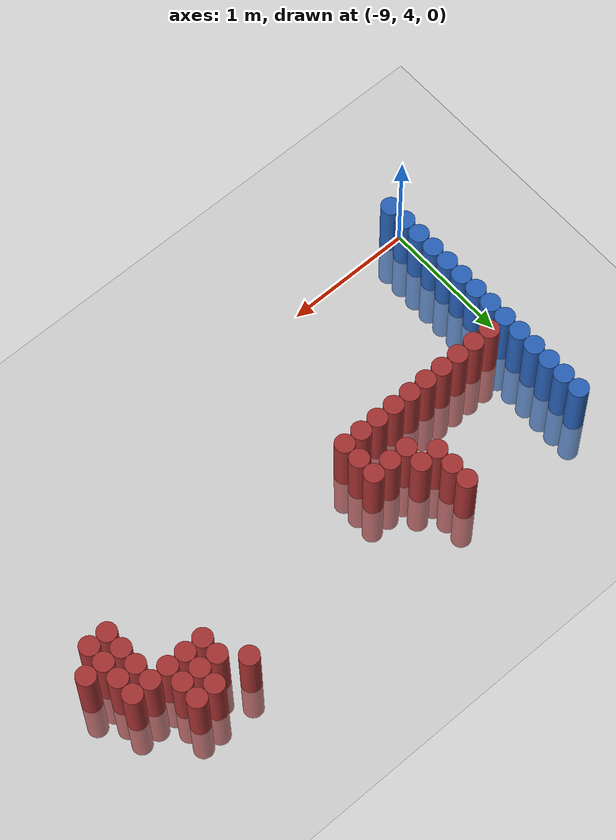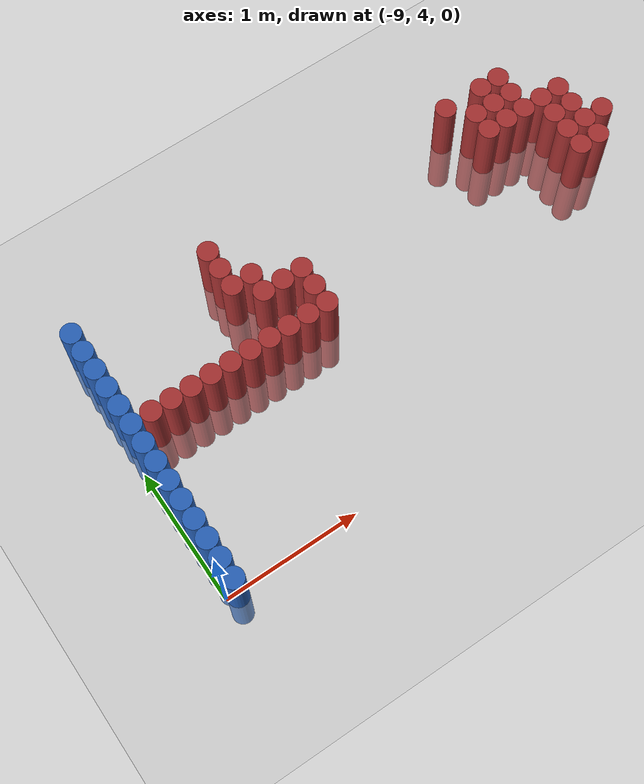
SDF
<sdf version="1.6">
 <world name="default">
  <model name="ground_plane">
   <static>1</static>
   <link name="link">
    <collision name="collision">
     <geometry><plane><normal>0 0 1</normal><size>100 100</size></plane></geometry>
     <surface><friction><ode><mu>100</mu><mu2>50</mu2></ode></friction></surface>
    </collision>
    <visual name="visual">
     <cast_shadows>0</cast_shadows>
     <geometry><plane><normal>0 0 1</normal><size>100 100</size></plane></geometry>
     <material>
      <script><uri>file://media/materials/scripts/gazebo.material</uri><name>Gazebo/Grey</name></script>
     </material>
    </visual>
   </link>
  </model>
  <model name="unit_cylinder_110">
   <static>1</static>
   <pose>-8.925000 3.975000 0.000000 0.000000 0.000000 0.000000</pose>
   <link name="link">
    <inertial>
     <mass>1</mass>
     <inertia><ixx>0.145833</ixx><ixy>0</ixy><ixz>0</ixz><iyy>0.145833</iyy><iyz>0</iyz><izz>0.125</izz></inertia>
    </inertial>
    <collision name="collision">
     <geometry><cylinder><radius>0.075000</radius><length>1</length></cylinder></geometry>
    </collision>
    <visual name="visual">
     <geometry><cylinder><radius>0.075000</radius><length>1</length></cylinder></geometry>
     <material>
      <ambient>0.152000 0.379000 0.720000 1</ambient>
      <diffuse>0.152000 0.379000 0.720000 1</diffuse>
     </material>
     <material>
      <script><name>Gazebo/Grey</name><uri>file://media/materials/scripts/gazebo.material</uri></script>
     </material>
    </visual>
   </link>
  </model>
  <model name="unit_cylinder_112">
   <static>1</static>
   <pose>-8.925000 4.125000 0.000000 0.000000 0.000000 0.000000</pose>
   <link name="link">
    <inertial>
     <mass>1</mass>
     <inertia><ixx>0.145833</ixx><ixy>0</ixy><ixz>0</ixz><iyy>0.145833</iyy><iyz>0</iyz><izz>0.125</izz></inertia>
    </inertial>
    <collision name="collision">
     <geometry><cylinder><radius>0.075000</radius><length>1</length></cylinder></geometry>
    </collision>
    <visual name="visual">
     <geometry><cylinder><radius>0.075000</radius><length>1</length></cylinder></geometry>
     <material>
      <ambient>0.152000 0.379000 0.720000 1</ambient>
      <diffuse>0.152000 0.379000 0.720000 1</diffuse>
     </material>
     <material>
      <script><name>Gazebo/Grey</name><uri>file://media/materials/scripts/gazebo.material</uri></script>
     </material>
    </visual>
   </link>
  </model>
  <model name="unit_cylinder_114">
   <static>1</static>
   <pose>-8.925000 4.275000 0.000000 0.000000 0.000000 0.000000</pose>
   <link name="link">
    <inertial>
     <mass>1</mass>
     <inertia><ixx>0.145833</ixx><ixy>0</ixy><ixz>0</ixz><iyy>0.145833</iyy><iyz>0</iyz><izz>0.125</izz></inertia>
    </inertial>
    <collision name="collision">
     <geometry><cylinder><radius>0.075000</radius><length>1</length></cylinder></geometry>
    </collision>
    <visual name="visual">
     <geometry><cylinder><radius>0.075000</radius><length>1</length></cylinder></geometry>
     <material>
      <ambient>0.152000 0.379000 0.720000 1</ambient>
      <diffuse>0.152000 0.379000 0.720000 1</diffuse>
     </material>
     <material>
      <script><name>Gazebo/Grey</name><uri>file://media/materials/scripts/gazebo.material</uri></script>
     </material>
    </visual>
   </link>
  </model>
  <model name="unit_cylinder_116">
   <static>1</static>
   <pose>-8.925000 4.425000 0.000000 0.000000 0.000000 0.000000</pose>
   <link name="link">
    <inertial>
     <mass>1</mass>
     <inertia><ixx>0.145833</ixx><ixy>0</ixy><ixz>0</ixz><iyy>0.145833</iyy><iyz>0</iyz><izz>0.125</izz></inertia>
    </inertial>
    <collision name="collision">
     <geometry><cylinder><radius>0.075000</radius><length>1</length></cylinder></geometry>
    </collision>
    <visual name="visual">
     <geometry><cylinder><radius>0.075000</radius><length>1</length></cylinder></geometry>
     <material>
      <ambient>0.152000 0.379000 0.720000 1</ambient>
      <diffuse>0.152000 0.379000 0.720000 1</diffuse>
     </material>
     <material>
      <script><name>Gazebo/Grey</name><uri>file://media/materials/scripts/gazebo.material</uri></script>
     </material>
    </visual>
   </link>
  </model>
  <model name="unit_cylinder_118">
   <static>1</static>
   <pose>-8.925000 4.575000 0.000000 0.000000 0.000000 0.000000</pose>
   <link name="link">
    <inertial>
     <mass>1</mass>
     <inertia><ixx>0.145833</ixx><ixy>0</ixy><ixz>0</ixz><iyy>0.145833</iyy><iyz>0</iyz><izz>0.125</izz></inertia>
    </inertial>
    <collision name="collision">
     <geometry><cylinder><radius>0.075000</radius><length>1</length></cylinder></geometry>
    </collision>
    <visual name="visual">
     <geometry><cylinder><radius>0.075000</radius><length>1</length></cylinder></geometry>
     <material>
      <ambient>0.152000 0.379000 0.720000 1</ambient>
      <diffuse>0.152000 0.379000 0.720000 1</diffuse>
     </material>
     <material>
      <script><name>Gazebo/Grey</name><uri>file://media/materials/scripts/gazebo.material</uri></script>
     </material>
    </visual>
   </link>
  </model>
  <model name="unit_cylinder_120">
   <static>1</static>
   <pose>-8.925000 4.725000 0.000000 0.000000 0.000000 0.000000</pose>
   <link name="link">
    <inertial>
     <mass>1</mass>
     <inertia><ixx>0.145833</ixx><ixy>0</ixy><ixz>0</ixz><iyy>0.145833</iyy><iyz>0</iyz><izz>0.125</izz></inertia>
    </inertial>
    <collision name="collision">
     <geometry><cylinder><radius>0.075000</radius><length>1</length></cylinder></geometry>
    </collision>
    <visual name="visual">
     <geometry><cylinder><radius>0.075000</radius><length>1</length></cylinder></geometry>
     <material>
      <ambient>0.152000 0.379000 0.720000 1</ambient>
      <diffuse>0.152000 0.379000 0.720000 1</diffuse>
     </material>
     <material>
      <script><name>Gazebo/Grey</name><uri>file://media/materials/scripts/gazebo.material</uri></script>
     </material>
    </visual>
   </link>
  </model>
  <model name="unit_cylinder_122">
   <static>1</static>
   <pose>-8.925000 4.875000 0.000000 0.000000 0.000000 0.000000</pose>
   <link name="link">
    <inertial>
     <mass>1</mass>
     <inertia><ixx>0.145833</ixx><ixy>0</ixy><ixz>0</ixz><iyy>0.145833</iyy><iyz>0</iyz><izz>0.125</izz></inertia>
    </inertial>
    <collision name="collision">
     <geometry><cylinder><radius>0.075000</radius><length>1</length></cylinder></geometry>
    </collision>
    <visual name="visual">
     <geometry><cylinder><radius>0.075000</radius><length>1</length></cylinder></geometry>
     <material>
      <ambient>0.152000 0.379000 0.720000 1</ambient>
      <diffuse>0.152000 0.379000 0.720000 1</diffuse>
     </material>
     <material>
      <script><name>Gazebo/Grey</name><uri>file://media/materials/scripts/gazebo.material</uri></script>
     </material>
    </visual>
   </link>
  </model>
  <model name="unit_cylinder_124">
   <static>1</static>
   <pose>-8.925000 5.025000 0.000000 0.000000 0.000000 0.000000</pose>
   <link name="link">
    <inertial>
     <mass>1</mass>
     <inertia><ixx>0.145833</ixx><ixy>0</ixy><ixz>0</ixz><iyy>0.145833</iyy><iyz>0</iyz><izz>0.125</izz></inertia>
    </inertial>
    <collision name="collision">
     <geometry><cylinder><radius>0.075000</radius><length>1</length></cylinder></geometry>
    </collision>
    <visual name="visual">
     <geometry><cylinder><radius>0.075000</radius><length>1</length></cylinder></geometry>
     <material>
      <ambient>0.152000 0.379000 0.720000 1</ambient>
      <diffuse>0.152000 0.379000 0.720000 1</diffuse>
     </material>
     <material>
      <script><name>Gazebo/Grey</name><uri>file://media/materials/scripts/gazebo.material</uri></script>
     </material>
    </visual>
   </link>
  </model>
  <model name="unit_cylinder_125">
   <static>1</static>
   <pose>-8.925000 5.175000 0.000000 0.000000 0.000000 0.000000</pose>
   <link name="link">
    <inertial>
     <mass>1</mass>
     <inertia><ixx>0.145833</ixx><ixy>0</ixy><ixz>0</ixz><iyy>0.145833</iyy><iyz>0</iyz><izz>0.125</izz></inertia>
    </inertial>
    <collision name="collision">
     <geometry><cylinder><radius>0.075000</radius><length>1</length></cylinder></geometry>
    </collision>
    <visual name="visual">
     <geometry><cylinder><radius>0.075000</radius><length>1</length></cylinder></geometry>
     <material>
      <ambient>0.152000 0.379000 0.720000 1</ambient>
      <diffuse>0.152000 0.379000 0.720000 1</diffuse>
     </material>
     <material>
      <script><name>Gazebo/Grey</name><uri>file://media/materials/scripts/gazebo.material</uri></script>
     </material>
    </visual>
   </link>
  </model>
  <model name="unit_cylinder_126">
   <static>1</static>
   <pose>-8.925000 5.325000 0.000000 0.000000 0.000000 0.000000</pose>
   <link name="link">
    <inertial>
     <mass>1</mass>
     <inertia><ixx>0.145833</ixx><ixy>0</ixy><ixz>0</ixz><iyy>0.145833</iyy><iyz>0</iyz><izz>0.125</izz></inertia>
    </inertial>
    <collision name="collision">
     <geometry><cylinder><radius>0.075000</radius><length>1</length></cylinder></geometry>
    </collision>
    <visual name="visual">
     <geometry><cylinder><radius>0.075000</radius><length>1</length></cylinder></geometry>
     <material>
      <ambient>0.152000 0.379000 0.720000 1</ambient>
      <diffuse>0.152000 0.379000 0.720000 1</diffuse>
     </material>
     <material>
      <script><name>Gazebo/Grey</name><uri>file://media/materials/scripts/gazebo.material</uri></script>
     </material>
    </visual>
   </link>
  </model>
  <model name="unit_cylinder_127">
   <static>1</static>
   <pose>-8.925000 5.475000 0.000000 0.000000 0.000000 0.000000</pose>
   <link name="link">
    <inertial>
     <mass>1</mass>
     <inertia><ixx>0.145833</ixx><ixy>0</ixy><ixz>0</ixz><iyy>0.145833</iyy><iyz>0</iyz><izz>0.125</izz></inertia>
    </inertial>
    <collision name="collision">
     <geometry><cylinder><radius>0.075000</radius><length>1</length></cylinder></geometry>
    </collision>
    <visual name="visual">
     <geometry><cylinder><radius>0.075000</radius><length>1</length></cylinder></geometry>
     <material>
      <ambient>0.152000 0.379000 0.720000 1</ambient>
      <diffuse>0.152000 0.379000 0.720000 1</diffuse>
     </material>
     <material>
      <script><name>Gazebo/Grey</name><uri>file://media/materials/scripts/gazebo.material</uri></script>
     </material>
    </visual>
   </link>
  </model>
  <model name="unit_cylinder_128">
   <static>1</static>
   <pose>-8.925000 5.625000 0.000000 0.000000 0.000000 0.000000</pose>
   <link name="link">
    <inertial>
     <mass>1</mass>
     <inertia><ixx>0.145833</ixx><ixy>0</ixy><ixz>0</ixz><iyy>0.145833</iyy><iyz>0</iyz><izz>0.125</izz></inertia>
    </inertial>
    <collision name="collision">
     <geometry><cylinder><radius>0.075000</radius><length>1</length></cylinder></geometry>
    </collision>
    <visual name="visual">
     <geometry><cylinder><radius>0.075000</radius><length>1</length></cylinder></geometry>
     <material>
      <ambient>0.152000 0.379000 0.720000 1</ambient>
      <diffuse>0.152000 0.379000 0.720000 1</diffuse>
     </material>
     <material>
      <script><name>Gazebo/Grey</name><uri>file://media/materials/scripts/gazebo.material</uri></script>
     </material>
    </visual>
   </link>
  </model>
  <model name="unit_cylinder_129">
   <static>1</static>
   <pose>-8.925000 5.775000 0.000000 0.000000 0.000000 0.000000</pose>
   <link name="link">
    <inertial>
     <mass>1</mass>
     <inertia><ixx>0.145833</ixx><ixy>0</ixy><ixz>0</ixz><iyy>0.145833</iyy><iyz>0</iyz><izz>0.125</izz></inertia>
    </inertial>
    <collision name="collision">
     <geometry><cylinder><radius>0.075000</radius><length>1</length></cylinder></geometry>
    </collision>
    <visual name="visual">
     <geometry><cylinder><radius>0.075000</radius><length>1</length></cylinder></geometry>
     <material>
      <ambient>0.152000 0.379000 0.720000 1</ambient>
      <diffuse>0.152000 0.379000 0.720000 1</diffuse>
     </material>
     <material>
      <script><name>Gazebo/Grey</name><uri>file://media/materials/scripts/gazebo.material</uri></script>
     </material>
    </visual>
   </link>
  </model>
  <model name="unit_cylinder_130">
   <static>1</static>
   <pose>-8.925000 5.925000 0.000000 0.000000 0.000000 0.000000</pose>
   <link name="link">
    <inertial>
     <mass>1</mass>
     <inertia><ixx>0.145833</ixx><ixy>0</ixy><ixz>0</ixz><iyy>0.145833</iyy><iyz>0</iyz><izz>0.125</izz></inertia>
    </inertial>
    <collision name="collision">
     <geometry><cylinder><radius>0.075000</radius><length>1</length></cylinder></geometry>
    </collision>
    <visual name="visual">
     <geometry><cylinder><radius>0.075000</radius><length>1</length></cylinder></geometry>
     <material>
      <ambient>0.152000 0.379000 0.720000 1</ambient>
      <diffuse>0.152000 0.379000 0.720000 1</diffuse>
     </material>
     <material>
      <script><name>Gazebo/Grey</name><uri>file://media/materials/scripts/gazebo.material</uri></script>
     </material>
    </visual>
   </link>
  </model>
  <model name="unit_cylinder_155">
   <static>1</static>
   <pose>-8.775000 5.175000 0.000000 0.000000 0.000000 0.000000</pose>
   <link name="link">
    <inertial>
     <mass>1</mass>
     <inertia><ixx>0.145833</ixx><ixy>0</ixy><ixz>0</ixz><iyy>0.145833</iyy><iyz>0</iyz><izz>0.125</izz></inertia>
    </inertial>
    <collision name="collision">
     <geometry><cylinder><radius>0.075000</radius><length>1</length></cylinder></geometry>
    </collision>
    <visual name="visual">
     <geometry><cylinder><radius>0.075000</radius><length>1</length></cylinder></geometry>
     <material>
      <ambient>0.648000 0.192000 0.192000 1</ambient>
      <diffuse>0.648000 0.192000 0.192000 1</diffuse>
     </material>
     <material>
      <script><name>Gazebo/Grey</name><uri>file://media/materials/scripts/gazebo.material</uri></script>
     </material>
    </visual>
   </link>
  </model>
  <model name="unit_cylinder_157">
   <static>1</static>
   <pose>-8.625000 5.175000 0.000000 0.000000 0.000000 0.000000</pose>
   <link name="link">
    <inertial>
     <mass>1</mass>
     <inertia><ixx>0.145833</ixx><ixy>0</ixy><ixz>0</ixz><iyy>0.145833</iyy><iyz>0</iyz><izz>0.125</izz></inertia>
    </inertial>
    <collision name="collision">
     <geometry><cylinder><radius>0.075000</radius><length>1</length></cylinder></geometry>
    </collision>
    <visual name="visual">
     <geometry><cylinder><radius>0.075000</radius><length>1</length></cylinder></geometry>
     <material>
      <ambient>0.648000 0.192000 0.192000 1</ambient>
      <diffuse>0.648000 0.192000 0.192000 1</diffuse>
     </material>
     <material>
      <script><name>Gazebo/Grey</name><uri>file://media/materials/scripts/gazebo.material</uri></script>
     </material>
    </visual>
   </link>
  </model>
  <model name="unit_cylinder_159">
   <static>1</static>
   <pose>-8.475000 5.175000 0.000000 0.000000 0.000000 0.000000</pose>
   <link name="link">
    <inertial>
     <mass>1</mass>
     <inertia><ixx>0.145833</ixx><ixy>0</ixy><ixz>0</ixz><iyy>0.145833</iyy><iyz>0</iyz><izz>0.125</izz></inertia>
    </inertial>
    <collision name="collision">
     <geometry><cylinder><radius>0.075000</radius><length>1</length></cylinder></geometry>
    </collision>
    <visual name="visual">
     <geometry><cylinder><radius>0.075000</radius><length>1</length></cylinder></geometry>
     <material>
      <ambient>0.648000 0.192000 0.192000 1</ambient>
      <diffuse>0.648000 0.192000 0.192000 1</diffuse>
     </material>
     <material>
      <script><name>Gazebo/Grey</name><uri>file://media/materials/scripts/gazebo.material</uri></script>
     </material>
    </visual>
   </link>
  </model>
  <model name="unit_cylinder_181">
   <static>1</static>
   <pose>-8.325000 5.175000 0.000000 0.000000 0.000000 0.000000</pose>
   <link name="link">
    <inertial>
     <mass>1</mass>
     <inertia><ixx>0.145833</ixx><ixy>0</ixy><ixz>0</ixz><iyy>0.145833</iyy><iyz>0</iyz><izz>0.125</izz></inertia>
    </inertial>
    <collision name="collision">
     <geometry><cylinder><radius>0.075000</radius><length>1</length></cylinder></geometry>
    </collision>
    <visual name="visual">
     <geometry><cylinder><radius>0.075000</radius><length>1</length></cylinder></geometry>
     <material>
      <ambient>0.648000 0.192000 0.192000 1</ambient>
      <diffuse>0.648000 0.192000 0.192000 1</diffuse>
     </material>
     <material>
      <script><name>Gazebo/Grey</name><uri>file://media/materials/scripts/gazebo.material</uri></script>
     </material>
    </visual>
   </link>
  </model>
  <model name="unit_cylinder_185">
   <static>1</static>
   <pose>-8.175000 5.175000 0.000000 0.000000 0.000000 0.000000</pose>
   <link name="link">
    <inertial>
     <mass>1</mass>
     <inertia><ixx>0.145833</ixx><ixy>0</ixy><ixz>0</ixz><iyy>0.145833</iyy><iyz>0</iyz><izz>0.125</izz></inertia>
    </inertial>
    <collision name="collision">
     <geometry><cylinder><radius>0.075000</radius><length>1</length></cylinder></geometry>
    </collision>
    <visual name="visual">
     <geometry><cylinder><radius>0.075000</radius><length>1</length></cylinder></geometry>
     <material>
      <ambient>0.648000 0.192000 0.192000 1</ambient>
      <diffuse>0.648000 0.192000 0.192000 1</diffuse>
     </material>
     <material>
      <script><name>Gazebo/Grey</name><uri>file://media/materials/scripts/gazebo.material</uri></script>
     </material>
    </visual>
   </link>
  </model>
  <model name="unit_cylinder_189">
   <static>1</static>
   <pose>-8.025000 5.175000 0.000000 0.000000 0.000000 0.000000</pose>
   <link name="link">
    <inertial>
     <mass>1</mass>
     <inertia><ixx>0.145833</ixx><ixy>0</ixy><ixz>0</ixz><iyy>0.145833</iyy><iyz>0</iyz><izz>0.125</izz></inertia>
    </inertial>
    <collision name="collision">
     <geometry><cylinder><radius>0.075000</radius><length>1</length></cylinder></geometry>
    </collision>
    <visual name="visual">
     <geometry><cylinder><radius>0.075000</radius><length>1</length></cylinder></geometry>
     <material>
      <ambient>0.648000 0.192000 0.192000 1</ambient>
      <diffuse>0.648000 0.192000 0.192000 1</diffuse>
     </material>
     <material>
      <script><name>Gazebo/Grey</name><uri>file://media/materials/scripts/gazebo.material</uri></script>
     </material>
    </visual>
   </link>
  </model>
  <model name="unit_cylinder_191">
   <static>1</static>
   <pose>-7.875000 5.175000 0.000000 0.000000 0.000000 0.000000</pose>
   <link name="link">
    <inertial>
     <mass>1</mass>
     <inertia><ixx>0.145833</ixx><ixy>0</ixy><ixz>0</ixz><iyy>0.145833</iyy><iyz>0</iyz><izz>0.125</izz></inertia>
    </inertial>
    <collision name="collision">
     <geometry><cylinder><radius>0.075000</radius><length>1</length></cylinder></geometry>
    </collision>
    <visual name="visual">
     <geometry><cylinder><radius>0.075000</radius><length>1</length></cylinder></geometry>
     <material>
      <ambient>0.648000 0.192000 0.192000 1</ambient>
      <diffuse>0.648000 0.192000 0.192000 1</diffuse>
     </material>
     <material>
      <script><name>Gazebo/Grey</name><uri>file://media/materials/scripts/gazebo.material</uri></script>
     </material>
    </visual>
   </link>
  </model>
  <model name="unit_cylinder_192">
   <static>1</static>
   <pose>-7.875000 5.625000 0.000000 0.000000 0.000000 0.000000</pose>
   <link name="link">
    <inertial>
     <mass>1</mass>
     <inertia><ixx>0.145833</ixx><ixy>0</ixy><ixz>0</ixz><iyy>0.145833</iyy><iyz>0</iyz><izz>0.125</izz></inertia>
    </inertial>
    <collision name="collision">
     <geometry><cylinder><radius>0.075000</radius><length>1</length></cylinder></geometry>
    </collision>
    <visual name="visual">
     <geometry><cylinder><radius>0.075000</radius><length>1</length></cylinder></geometry>
     <material>
      <ambient>0.648000 0.192000 0.192000 1</ambient>
      <diffuse>0.648000 0.192000 0.192000 1</diffuse>
     </material>
     <material>
      <script><name>Gazebo/Grey</name><uri>file://media/materials/scripts/gazebo.material</uri></script>
     </material>
    </visual>
   </link>
  </model>
  <model name="unit_cylinder_193">
   <static>1</static>
   <pose>-7.875000 5.775000 0.000000 0.000000 0.000000 0.000000</pose>
   <link name="link">
    <inertial>
     <mass>1</mass>
     <inertia><ixx>0.145833</ixx><ixy>0</ixy><ixz>0</ixz><iyy>0.145833</iyy><iyz>0</iyz><izz>0.125</izz></inertia>
    </inertial>
    <collision name="collision">
     <geometry><cylinder><radius>0.075000</radius><length>1</length></cylinder></geometry>
    </collision>
    <visual name="visual">
     <geometry><cylinder><radius>0.075000</radius><length>1</length></cylinder></geometry>
     <material>
      <ambient>0.648000 0.192000 0.192000 1</ambient>
      <diffuse>0.648000 0.192000 0.192000 1</diffuse>
     </material>
     <material>
      <script><name>Gazebo/Grey</name><uri>file://media/materials/scripts/gazebo.material</uri></script>
     </material>
    </visual>
   </link>
  </model>
  <model name="unit_cylinder_194">
   <static>1</static>
   <pose>-7.875000 5.925000 0.000000 0.000000 0.000000 0.000000</pose>
   <link name="link">
    <inertial>
     <mass>1</mass>
     <inertia><ixx>0.145833</ixx><ixy>0</ixy><ixz>0</ixz><iyy>0.145833</iyy><iyz>0</iyz><izz>0.125</izz></inertia>
    </inertial>
    <collision name="collision">
     <geometry><cylinder><radius>0.075000</radius><length>1</length></cylinder></geometry>
    </collision>
    <visual name="visual">
     <geometry><cylinder><radius>0.075000</radius><length>1</length></cylinder></geometry>
     <material>
      <ambient>0.648000 0.192000 0.192000 1</ambient>
      <diffuse>0.648000 0.192000 0.192000 1</diffuse>
     </material>
     <material>
      <script><name>Gazebo/Grey</name><uri>file://media/materials/scripts/gazebo.material</uri></script>
     </material>
    </visual>
   </link>
  </model>
  <model name="unit_cylinder_199">
   <static>1</static>
   <pose>-7.725000 5.175000 0.000000 0.000000 0.000000 0.000000</pose>
   <link name="link">
    <inertial>
     <mass>1</mass>
     <inertia><ixx>0.145833</ixx><ixy>0</ixy><ixz>0</ixz><iyy>0.145833</iyy><iyz>0</iyz><izz>0.125</izz></inertia>
    </inertial>
    <collision name="collision">
     <geometry><cylinder><radius>0.075000</radius><length>1</length></cylinder></geometry>
    </collision>
    <visual name="visual">
     <geometry><cylinder><radius>0.075000</radius><length>1</length></cylinder></geometry>
     <material>
      <ambient>0.648000 0.192000 0.192000 1</ambient>
      <diffuse>0.648000 0.192000 0.192000 1</diffuse>
     </material>
     <material>
      <script><name>Gazebo/Grey</name><uri>file://media/materials/scripts/gazebo.material</uri></script>
     </material>
    </visual>
   </link>
  </model>
  <model name="unit_cylinder_200">
   <static>1</static>
   <pose>-7.725000 5.475000 0.000000 0.000000 0.000000 0.000000</pose>
   <link name="link">
    <inertial>
     <mass>1</mass>
     <inertia><ixx>0.145833</ixx><ixy>0</ixy><ixz>0</ixz><iyy>0.145833</iyy><iyz>0</iyz><izz>0.125</izz></inertia>
    </inertial>
    <collision name="collision">
     <geometry><cylinder><radius>0.075000</radius><length>1</length></cylinder></geometry>
    </collision>
    <visual name="visual">
     <geometry><cylinder><radius>0.075000</radius><length>1</length></cylinder></geometry>
     <material>
      <ambient>0.648000 0.192000 0.192000 1</ambient>
      <diffuse>0.648000 0.192000 0.192000 1</diffuse>
     </material>
     <material>
      <script><name>Gazebo/Grey</name><uri>file://media/materials/scripts/gazebo.material</uri></script>
     </material>
    </visual>
   </link>
  </model>
  <model name="unit_cylinder_201">
   <static>1</static>
   <pose>-7.725000 5.625000 0.000000 0.000000 0.000000 0.000000</pose>
   <link name="link">
    <inertial>
     <mass>1</mass>
     <inertia><ixx>0.145833</ixx><ixy>0</ixy><ixz>0</ixz><iyy>0.145833</iyy><iyz>0</iyz><izz>0.125</izz></inertia>
    </inertial>
    <collision name="collision">
     <geometry><cylinder><radius>0.075000</radius><length>1</length></cylinder></geometry>
    </collision>
    <visual name="visual">
     <geometry><cylinder><radius>0.075000</radius><length>1</length></cylinder></geometry>
     <material>
      <ambient>0.648000 0.192000 0.192000 1</ambient>
      <diffuse>0.648000 0.192000 0.192000 1</diffuse>
     </material>
     <material>
      <script><name>Gazebo/Grey</name><uri>file://media/materials/scripts/gazebo.material</uri></script>
     </material>
    </visual>
   </link>
  </model>
  <model name="unit_cylinder_202">
   <static>1</static>
   <pose>-7.575000 5.175000 0.000000 0.000000 0.000000 0.000000</pose>
   <link name="link">
    <inertial>
     <mass>1</mass>
     <inertia><ixx>0.145833</ixx><ixy>0</ixy><ixz>0</ixz><iyy>0.145833</iyy><iyz>0</iyz><izz>0.125</izz></inertia>
    </inertial>
    <collision name="collision">
     <geometry><cylinder><radius>0.075000</radius><length>1</length></cylinder></geometry>
    </collision>
    <visual name="visual">
     <geometry><cylinder><radius>0.075000</radius><length>1</length></cylinder></geometry>
     <material>
      <ambient>0.648000 0.192000 0.192000 1</ambient>
      <diffuse>0.648000 0.192000 0.192000 1</diffuse>
     </material>
     <material>
      <script><name>Gazebo/Grey</name><uri>file://media/materials/scripts/gazebo.material</uri></script>
     </material>
    </visual>
   </link>
  </model>
  <model name="unit_cylinder_203">
   <static>1</static>
   <pose>-7.575000 5.475000 0.000000 0.000000 0.000000 0.000000</pose>
   <link name="link">
    <inertial>
     <mass>1</mass>
     <inertia><ixx>0.145833</ixx><ixy>0</ixy><ixz>0</ixz><iyy>0.145833</iyy><iyz>0</iyz><izz>0.125</izz></inertia>
    </inertial>
    <collision name="collision">
     <geometry><cylinder><radius>0.075000</radius><length>1</length></cylinder></geometry>
    </collision>
    <visual name="visual">
     <geometry><cylinder><radius>0.075000</radius><length>1</length></cylinder></geometry>
     <material>
      <ambient>0.648000 0.192000 0.192000 1</ambient>
      <diffuse>0.648000 0.192000 0.192000 1</diffuse>
     </material>
     <material>
      <script><name>Gazebo/Grey</name><uri>file://media/materials/scripts/gazebo.material</uri></script>
     </material>
    </visual>
   </link>
  </model>
  <model name="unit_cylinder_204">
   <static>1</static>
   <pose>-7.425000 5.175000 0.000000 0.000000 0.000000 0.000000</pose>
   <link name="link">
    <inertial>
     <mass>1</mass>
     <inertia><ixx>0.145833</ixx><ixy>0</ixy><ixz>0</ixz><iyy>0.145833</iyy><iyz>0</iyz><izz>0.125</izz></inertia>
    </inertial>
    <collision name="collision">
     <geometry><cylinder><radius>0.075000</radius><length>1</length></cylinder></geometry>
    </collision>
    <visual name="visual">
     <geometry><cylinder><radius>0.075000</radius><length>1</length></cylinder></geometry>
     <material>
      <ambient>0.648000 0.192000 0.192000 1</ambient>
      <diffuse>0.648000 0.192000 0.192000 1</diffuse>
     </material>
     <material>
      <script><name>Gazebo/Grey</name><uri>file://media/materials/scripts/gazebo.material</uri></script>
     </material>
    </visual>
   </link>
  </model>
  <model name="unit_cylinder_205">
   <static>1</static>
   <pose>-7.425000 5.325000 0.000000 0.000000 0.000000 0.000000</pose>
   <link name="link">
    <inertial>
     <mass>1</mass>
     <inertia><ixx>0.145833</ixx><ixy>0</ixy><ixz>0</ixz><iyy>0.145833</iyy><iyz>0</iyz><izz>0.125</izz></inertia>
    </inertial>
    <collision name="collision">
     <geometry><cylinder><radius>0.075000</radius><length>1</length></cylinder></geometry>
    </collision>
    <visual name="visual">
     <geometry><cylinder><radius>0.075000</radius><length>1</length></cylinder></geometry>
     <material>
      <ambient>0.648000 0.192000 0.192000 1</ambient>
      <diffuse>0.648000 0.192000 0.192000 1</diffuse>
     </material>
     <material>
      <script><name>Gazebo/Grey</name><uri>file://media/materials/scripts/gazebo.material</uri></script>
     </material>
    </visual>
   </link>
  </model>
  <model name="unit_cylinder_206">
   <static>1</static>
   <pose>-7.425000 5.475000 0.000000 0.000000 0.000000 0.000000</pose>
   <link name="link">
    <inertial>
     <mass>1</mass>
     <inertia><ixx>0.145833</ixx><ixy>0</ixy><ixz>0</ixz><iyy>0.145833</iyy><iyz>0</iyz><izz>0.125</izz></inertia>
    </inertial>
    <collision name="collision">
     <geometry><cylinder><radius>0.075000</radius><length>1</length></cylinder></geometry>
    </collision>
    <visual name="visual">
     <geometry><cylinder><radius>0.075000</radius><length>1</length></cylinder></geometry>
     <material>
      <ambient>0.648000 0.192000 0.192000 1</ambient>
      <diffuse>0.648000 0.192000 0.192000 1</diffuse>
     </material>
     <material>
      <script><name>Gazebo/Grey</name><uri>file://media/materials/scripts/gazebo.material</uri></script>
     </material>
    </visual>
   </link>
  </model>
  <model name="unit_cylinder_248">
   <static>1</static>
   <pose>-5.925000 5.925000 0.000000 0.000000 0.000000 0.000000</pose>
   <link name="link">
    <inertial>
     <mass>1</mass>
     <inertia><ixx>0.145833</ixx><ixy>0</ixy><ixz>0</ixz><iyy>0.145833</iyy><iyz>0</iyz><izz>0.125</izz></inertia>
    </inertial>
    <collision name="collision">
     <geometry><cylinder><radius>0.075000</radius><length>1</length></cylinder></geometry>
    </collision>
    <visual name="visual">
     <geometry><cylinder><radius>0.075000</radius><length>1</length></cylinder></geometry>
     <material>
      <ambient>0.648000 0.192000 0.192000 1</ambient>
      <diffuse>0.648000 0.192000 0.192000 1</diffuse>
     </material>
     <material>
      <script><name>Gazebo/Grey</name><uri>file://media/materials/scripts/gazebo.material</uri></script>
     </material>
    </visual>
   </link>
  </model>
  <model name="unit_cylinder_257">
   <static>1</static>
   <pose>-5.775000 5.625000 0.000000 0.000000 0.000000 0.000000</pose>
   <link name="link">
    <inertial>
     <mass>1</mass>
     <inertia><ixx>0.145833</ixx><ixy>0</ixy><ixz>0</ixz><iyy>0.145833</iyy><iyz>0</iyz><izz>0.125</izz></inertia>
    </inertial>
    <collision name="collision">
     <geometry><cylinder><radius>0.075000</radius><length>1</length></cylinder></geometry>
    </collision>
    <visual name="visual">
     <geometry><cylinder><radius>0.075000</radius><length>1</length></cylinder></geometry>
     <material>
      <ambient>0.648000 0.192000 0.192000 1</ambient>
      <diffuse>0.648000 0.192000 0.192000 1</diffuse>
     </material>
     <material>
      <script><name>Gazebo/Grey</name><uri>file://media/materials/scripts/gazebo.material</uri></script>
     </material>
    </visual>
   </link>
  </model>
  <model name="unit_cylinder_258">
   <static>1</static>
   <pose>-5.775000 5.775000 0.000000 0.000000 0.000000 0.000000</pose>
   <link name="link">
    <inertial>
     <mass>1</mass>
     <inertia><ixx>0.145833</ixx><ixy>0</ixy><ixz>0</ixz><iyy>0.145833</iyy><iyz>0</iyz><izz>0.125</izz></inertia>
    </inertial>
    <collision name="collision">
     <geometry><cylinder><radius>0.075000</radius><length>1</length></cylinder></geometry>
    </collision>
    <visual name="visual">
     <geometry><cylinder><radius>0.075000</radius><length>1</length></cylinder></geometry>
     <material>
      <ambient>0.648000 0.192000 0.192000 1</ambient>
      <diffuse>0.648000 0.192000 0.192000 1</diffuse>
     </material>
     <material>
      <script><name>Gazebo/Grey</name><uri>file://media/materials/scripts/gazebo.material</uri></script>
     </material>
    </visual>
   </link>
  </model>
  <model name="unit_cylinder_265">
   <static>1</static>
   <pose>-5.625000 5.625000 0.000000 0.000000 0.000000 0.000000</pose>
   <link name="link">
    <inertial>
     <mass>1</mass>
     <inertia><ixx>0.145833</ixx><ixy>0</ixy><ixz>0</ixz><iyy>0.145833</iyy><iyz>0</iyz><izz>0.125</izz></inertia>
    </inertial>
    <collision name="collision">
     <geometry><cylinder><radius>0.075000</radius><length>1</length></cylinder></geometry>
    </collision>
    <visual name="visual">
     <geometry><cylinder><radius>0.075000</radius><length>1</length></cylinder></geometry>
     <material>
      <ambient>0.648000 0.192000 0.192000 1</ambient>
      <diffuse>0.648000 0.192000 0.192000 1</diffuse>
     </material>
     <material>
      <script><name>Gazebo/Grey</name><uri>file://media/materials/scripts/gazebo.material</uri></script>
     </material>
    </visual>
   </link>
  </model>
  <model name="unit_cylinder_266">
   <static>1</static>
   <pose>-5.625000 5.775000 0.000000 0.000000 0.000000 0.000000</pose>
   <link name="link">
    <inertial>
     <mass>1</mass>
     <inertia><ixx>0.145833</ixx><ixy>0</ixy><ixz>0</ixz><iyy>0.145833</iyy><iyz>0</iyz><izz>0.125</izz></inertia>
    </inertial>
    <collision name="collision">
     <geometry><cylinder><radius>0.075000</radius><length>1</length></cylinder></geometry>
    </collision>
    <visual name="visual">
     <geometry><cylinder><radius>0.075000</radius><length>1</length></cylinder></geometry>
     <material>
      <ambient>0.648000 0.192000 0.192000 1</ambient>
      <diffuse>0.648000 0.192000 0.192000 1</diffuse>
     </material>
     <material>
      <script><name>Gazebo/Grey</name><uri>file://media/materials/scripts/gazebo.material</uri></script>
     </material>
    </visual>
   </link>
  </model>
  <model name="unit_cylinder_267">
   <static>1</static>
   <pose>-5.625000 5.925000 0.000000 0.000000 0.000000 0.000000</pose>
   <link name="link">
    <inertial>
     <mass>1</mass>
     <inertia><ixx>0.145833</ixx><ixy>0</ixy><ixz>0</ixz><iyy>0.145833</iyy><iyz>0</iyz><izz>0.125</izz></inertia>
    </inertial>
    <collision name="collision">
     <geometry><cylinder><radius>0.075000</radius><length>1</length></cylinder></geometry>
    </collision>
    <visual name="visual">
     <geometry><cylinder><radius>0.075000</radius><length>1</length></cylinder></geometry>
     <material>
      <ambient>0.648000 0.192000 0.192000 1</ambient>
      <diffuse>0.648000 0.192000 0.192000 1</diffuse>
     </material>
     <material>
      <script><name>Gazebo/Grey</name><uri>file://media/materials/scripts/gazebo.material</uri></script>
     </material>
    </visual>
   </link>
  </model>
  <model name="unit_cylinder_272">
   <static>1</static>
   <pose>-5.475000 5.625000 0.000000 0.000000 0.000000 0.000000</pose>
   <link name="link">
    <inertial>
     <mass>1</mass>
     <inertia><ixx>0.145833</ixx><ixy>0</ixy><ixz>0</ixz><iyy>0.145833</iyy><iyz>0</iyz><izz>0.125</izz></inertia>
    </inertial>
    <collision name="collision">
     <geometry><cylinder><radius>0.075000</radius><length>1</length></cylinder></geometry>
    </collision>
    <visual name="visual">
     <geometry><cylinder><radius>0.075000</radius><length>1</length></cylinder></geometry>
     <material>
      <ambient>0.648000 0.192000 0.192000 1</ambient>
      <diffuse>0.648000 0.192000 0.192000 1</diffuse>
     </material>
     <material>
      <script><name>Gazebo/Grey</name><uri>file://media/materials/scripts/gazebo.material</uri></script>
     </material>
    </visual>
   </link>
  </model>
  <model name="unit_cylinder_273">
   <static>1</static>
   <pose>-5.475000 5.775000 0.000000 0.000000 0.000000 0.000000</pose>
   <link name="link">
    <inertial>
     <mass>1</mass>
     <inertia><ixx>0.145833</ixx><ixy>0</ixy><ixz>0</ixz><iyy>0.145833</iyy><iyz>0</iyz><izz>0.125</izz></inertia>
    </inertial>
    <collision name="collision">
     <geometry><cylinder><radius>0.075000</radius><length>1</length></cylinder></geometry>
    </collision>
    <visual name="visual">
     <geometry><cylinder><radius>0.075000</radius><length>1</length></cylinder></geometry>
     <material>
      <ambient>0.648000 0.192000 0.192000 1</ambient>
      <diffuse>0.648000 0.192000 0.192000 1</diffuse>
     </material>
     <material>
      <script><name>Gazebo/Grey</name><uri>file://media/materials/scripts/gazebo.material</uri></script>
     </material>
    </visual>
   </link>
  </model>
  <model name="unit_cylinder_274">
   <static>1</static>
   <pose>-5.475000 5.925000 0.000000 0.000000 0.000000 0.000000</pose>
   <link name="link">
    <inertial>
     <mass>1</mass>
     <inertia><ixx>0.145833</ixx><ixy>0</ixy><ixz>0</ixz><iyy>0.145833</iyy><iyz>0</iyz><izz>0.125</izz></inertia>
    </inertial>
    <collision name="collision">
     <geometry><cylinder><radius>0.075000</radius><length>1</length></cylinder></geometry>
    </collision>
    <visual name="visual">
     <geometry><cylinder><radius>0.075000</radius><length>1</length></cylinder></geometry>
     <material>
      <ambient>0.648000 0.192000 0.192000 1</ambient>
      <diffuse>0.648000 0.192000 0.192000 1</diffuse>
     </material>
     <material>
      <script><name>Gazebo/Grey</name><uri>file://media/materials/scripts/gazebo.material</uri></script>
     </material>
    </visual>
   </link>
  </model>
  <model name="unit_cylinder_277">
   <static>1</static>
   <pose>-5.325000 5.175000 0.000000 0.000000 0.000000 0.000000</pose>
   <link name="link">
    <inertial>
     <mass>1</mass>
     <inertia><ixx>0.145833</ixx><ixy>0</ixy><ixz>0</ixz><iyy>0.145833</iyy><iyz>0</iyz><izz>0.125</izz></inertia>
    </inertial>
    <collision name="collision">
     <geometry><cylinder><radius>0.075000</radius><length>1</length></cylinder></geometry>
    </collision>
    <visual name="visual">
     <geometry><cylinder><radius>0.075000</radius><length>1</length></cylinder></geometry>
     <material>
      <ambient>0.648000 0.192000 0.192000 1</ambient>
      <diffuse>0.648000 0.192000 0.192000 1</diffuse>
     </material>
     <material>
      <script><name>Gazebo/Grey</name><uri>file://media/materials/scripts/gazebo.material</uri></script>
     </material>
    </visual>
   </link>
  </model>
  <model name="unit_cylinder_278">
   <static>1</static>
   <pose>-5.325000 5.325000 0.000000 0.000000 0.000000 0.000000</pose>
   <link name="link">
    <inertial>
     <mass>1</mass>
     <inertia><ixx>0.145833</ixx><ixy>0</ixy><ixz>0</ixz><iyy>0.145833</iyy><iyz>0</iyz><izz>0.125</izz></inertia>
    </inertial>
    <collision name="collision">
     <geometry><cylinder><radius>0.075000</radius><length>1</length></cylinder></geometry>
    </collision>
    <visual name="visual">
     <geometry><cylinder><radius>0.075000</radius><length>1</length></cylinder></geometry>
     <material>
      <ambient>0.648000 0.192000 0.192000 1</ambient>
      <diffuse>0.648000 0.192000 0.192000 1</diffuse>
     </material>
     <material>
      <script><name>Gazebo/Grey</name><uri>file://media/materials/scripts/gazebo.material</uri></script>
     </material>
    </visual>
   </link>
  </model>
  <model name="unit_cylinder_279">
   <static>1</static>
   <pose>-5.325000 5.475000 0.000000 0.000000 0.000000 0.000000</pose>
   <link name="link">
    <inertial>
     <mass>1</mass>
     <inertia><ixx>0.145833</ixx><ixy>0</ixy><ixz>0</ixz><iyy>0.145833</iyy><iyz>0</iyz><izz>0.125</izz></inertia>
    </inertial>
    <collision name="collision">
     <geometry><cylinder><radius>0.075000</radius><length>1</length></cylinder></geometry>
    </collision>
    <visual name="visual">
     <geometry><cylinder><radius>0.075000</radius><length>1</length></cylinder></geometry>
     <material>
      <ambient>0.648000 0.192000 0.192000 1</ambient>
      <diffuse>0.648000 0.192000 0.192000 1</diffuse>
     </material>
     <material>
      <script><name>Gazebo/Grey</name><uri>file://media/materials/scripts/gazebo.material</uri></script>
     </material>
    </visual>
   </link>
  </model>
  <model name="unit_cylinder_280">
   <static>1</static>
   <pose>-5.325000 5.625000 0.000000 0.000000 0.000000 0.000000</pose>
   <link name="link">
    <inertial>
     <mass>1</mass>
     <inertia><ixx>0.145833</ixx><ixy>0</ixy><ixz>0</ixz><iyy>0.145833</iyy><iyz>0</iyz><izz>0.125</izz></inertia>
    </inertial>
    <collision name="collision">
     <geometry><cylinder><radius>0.075000</radius><length>1</length></cylinder></geometry>
    </collision>
    <visual name="visual">
     <geometry><cylinder><radius>0.075000</radius><length>1</length></cylinder></geometry>
     <material>
      <ambient>0.648000 0.192000 0.192000 1</ambient>
      <diffuse>0.648000 0.192000 0.192000 1</diffuse>
     </material>
     <material>
      <script><name>Gazebo/Grey</name><uri>file://media/materials/scripts/gazebo.material</uri></script>
     </material>
    </visual>
   </link>
  </model>
  <model name="unit_cylinder_282">
   <static>1</static>
   <pose>-5.175000 5.175000 0.000000 0.000000 0.000000 0.000000</pose>
   <link name="link">
    <inertial>
     <mass>1</mass>
     <inertia><ixx>0.145833</ixx><ixy>0</ixy><ixz>0</ixz><iyy>0.145833</iyy><iyz>0</iyz><izz>0.125</izz></inertia>
    </inertial>
    <collision name="collision">
     <geometry><cylinder><radius>0.075000</radius><length>1</length></cylinder></geometry>
    </collision>
    <visual name="visual">
     <geometry><cylinder><radius>0.075000</radius><length>1</length></cylinder></geometry>
     <material>
      <ambient>0.648000 0.192000 0.192000 1</ambient>
      <diffuse>0.648000 0.192000 0.192000 1</diffuse>
     </material>
     <material>
      <script><name>Gazebo/Grey</name><uri>file://media/materials/scripts/gazebo.material</uri></script>
     </material>
    </visual>
   </link>
  </model>
  <model name="unit_cylinder_283">
   <static>1</static>
   <pose>-5.175000 5.325000 0.000000 0.000000 0.000000 0.000000</pose>
   <link name="link">
    <inertial>
     <mass>1</mass>
     <inertia><ixx>0.145833</ixx><ixy>0</ixy><ixz>0</ixz><iyy>0.145833</iyy><iyz>0</iyz><izz>0.125</izz></inertia>
    </inertial>
    <collision name="collision">
     <geometry><cylinder><radius>0.075000</radius><length>1</length></cylinder></geometry>
    </collision>
    <visual name="visual">
     <geometry><cylinder><radius>0.075000</radius><length>1</length></cylinder></geometry>
     <material>
      <ambient>0.648000 0.192000 0.192000 1</ambient>
      <diffuse>0.648000 0.192000 0.192000 1</diffuse>
     </material>
     <material>
      <script><name>Gazebo/Grey</name><uri>file://media/materials/scripts/gazebo.material</uri></script>
     </material>
    </visual>
   </link>
  </model>
  <model name="unit_cylinder_284">
   <static>1</static>
   <pose>-5.175000 5.475000 0.000000 0.000000 0.000000 0.000000</pose>
   <link name="link">
    <inertial>
     <mass>1</mass>
     <inertia><ixx>0.145833</ixx><ixy>0</ixy><ixz>0</ixz><iyy>0.145833</iyy><iyz>0</iyz><izz>0.125</izz></inertia>
    </inertial>
    <collision name="collision">
     <geometry><cylinder><radius>0.075000</radius><length>1</length></cylinder></geometry>
    </collision>
    <visual name="visual">
     <geometry><cylinder><radius>0.075000</radius><length>1</length></cylinder></geometry>
     <material>
      <ambient>0.648000 0.192000 0.192000 1</ambient>
      <diffuse>0.648000 0.192000 0.192000 1</diffuse>
     </material>
     <material>
      <script><name>Gazebo/Grey</name><uri>file://media/materials/scripts/gazebo.material</uri></script>
     </material>
    </visual>
   </link>
  </model>
  <model name="unit_cylinder_285">
   <static>1</static>
   <pose>-5.175000 5.625000 0.000000 0.000000 0.000000 0.000000</pose>
   <link name="link">
    <inertial>
     <mass>1</mass>
     <inertia><ixx>0.145833</ixx><ixy>0</ixy><ixz>0</ixz><iyy>0.145833</iyy><iyz>0</iyz><izz>0.125</izz></inertia>
    </inertial>
    <collision name="collision">
     <geometry><cylinder><radius>0.075000</radius><length>1</length></cylinder></geometry>
    </collision>
    <visual name="visual">
     <geometry><cylinder><radius>0.075000</radius><length>1</length></cylinder></geometry>
     <material>
      <ambient>0.648000 0.192000 0.192000 1</ambient>
      <diffuse>0.648000 0.192000 0.192000 1</diffuse>
     </material>
     <material>
      <script><name>Gazebo/Grey</name><uri>file://media/materials/scripts/gazebo.material</uri></script>
     </material>
    </visual>
   </link>
  </model>
  <model name="unit_cylinder_286">
   <static>1</static>
   <pose>-5.025000 5.325000 0.000000 0.000000 0.000000 0.000000</pose>
   <link name="link">
    <inertial>
     <mass>1</mass>
     <inertia><ixx>0.145833</ixx><ixy>0</ixy><ixz>0</ixz><iyy>0.145833</iyy><iyz>0</iyz><izz>0.125</izz></inertia>
    </inertial>
    <collision name="collision">
     <geometry><cylinder><radius>0.075000</radius><length>1</length></cylinder></geometry>
    </collision>
    <visual name="visual">
     <geometry><cylinder><radius>0.075000</radius><length>1</length></cylinder></geometry>
     <material>
      <ambient>0.648000 0.192000 0.192000 1</ambient>
      <diffuse>0.648000 0.192000 0.192000 1</diffuse>
     </material>
     <material>
      <script><name>Gazebo/Grey</name><uri>file://media/materials/scripts/gazebo.material</uri></script>
     </material>
    </visual>
   </link>
  </model>
 </world>
</sdf>
